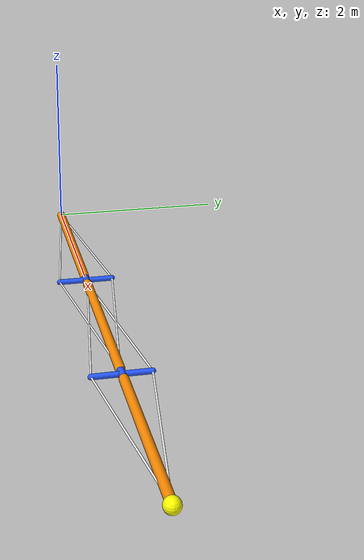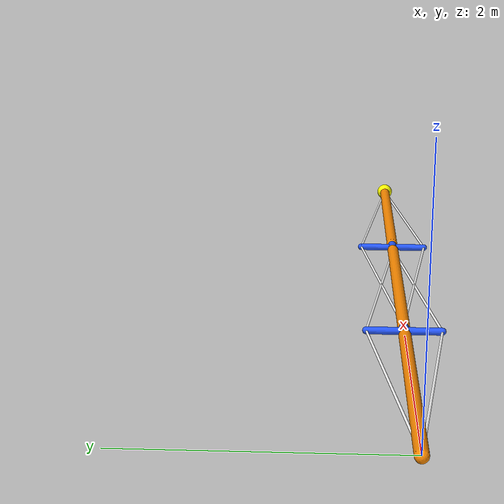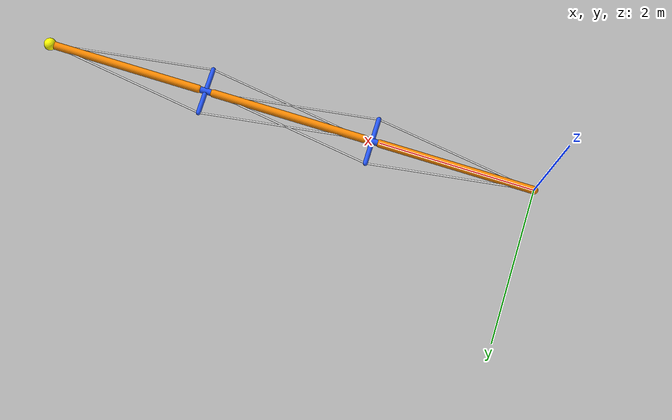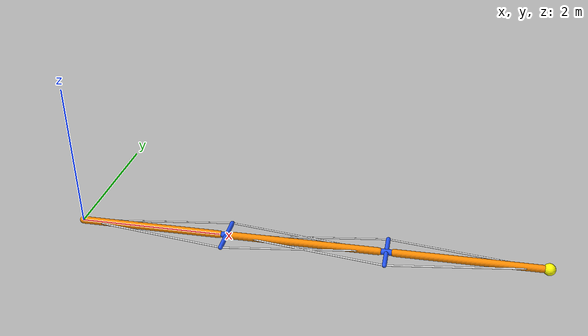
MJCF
<mujoco model="multi_joint_cable_dirven_space_robot">
    <compiler angle="radian" coordinate="local" inertiafromgeom="auto"/>
    <option gravity="0 0 0" integrator="RK4" timestep="0.01"/>

    <visual>
        <global offwidth="1280" offheight="960"/>
    </visual>

    <default>
        <joint type="hinge" axis="0 0 1" limited="true" range="-1.5708 1.5708" damping="2.0"/>
        <geom type="capsule" size="0.05"/>
        <site size="0.04"/>
        <tendon width="0.01" rgba="1 1 1 1"/>
    </default>

    <asset>
        <material name="mat_main_link" rgba="1 0.55 0 1"/>
        <material name="mat_spreader"  rgba="0.15 0.35 1.0 1"/>
        <material name="mat_anchor"    rgba="1 1 1 0"/>
        <!-- 8 个绳索驱动电机的材质: alpha=0 使其在 MuJoCo 渲染中完全不可见,
             同时每个 motor_*_geom 会附加 contype=0 / conaffinity=0 禁用碰撞,
             mass=0 本身也不参与动力学 -> 物理上等价于"不存在",
             仅保留其 XML 定义作为机构装配位置的文档. -->
        <material name="mat_motor"     rgba="0.25 0.25 0.28 0"/>
    </asset>

    <worldbody>
        <light pos="0 0 10" dir="0 0 -1" diffuse="1 1 1"/>

        <site name="anchor_base" pos="0 0 0" material="mat_anchor"/>

        <!-- Link 1: 固定基座 (L1 = 2.0 m)                                     -->
        <body name="link1" pos="0 0 0">
            <geom name="geom_link1" fromto="0 0 0 2.0 0 0" size="0.05" material="mat_main_link" mass="2.866"/>

            <!-- Link1 首端铰链处的 2 个绳索电机 (m11 / m12), 与 anchor_base / cable11 / cable12 同轴
                 contype=conaffinity=0 -> 禁止参与碰撞; material=mat_motor (alpha=0) -> 渲染不可见 -->
            <geom name="motor_m11_geom" type="cylinder" pos="0 0  0.09" euler="0 0 0"
                  size="0.06 0.02" material="mat_motor" mass="0" contype="0" conaffinity="0"/>
            <geom name="motor_m12_geom" type="cylinder" pos="0 0 -0.09" euler="0 0 0"
                  size="0.06 0.02" material="mat_motor" mass="0" contype="0" conaffinity="0"/>

            <!-- Link 2: 第一级 spreader 主轴 (m2=1.161, L2=0.2)                -->
            <body name="link2" pos="2.0 0 0">
                <joint name="joint1"/>
                <inertial pos="0.1 0 0" mass="1.161" diaginertia="0.00387 0.00387 0.00387"/>
                <geom name="geom_link2" fromto="0 0 0 0.2 0 0" size="0.04" material="mat_spreader" mass="0"/>

                <!-- 第一级十字架 (Ls1 = 0.6 m) -->
                <geom name="geom_spreader1" fromto="0.1 -0.3 0 0.1 0.3 0" size="0.03" material="mat_spreader" mass="0"/>
                <site name="spreader1_top" pos="0.1  0.3 0" material="mat_anchor"/>
                <site name="spreader1_bot" pos="0.1 -0.3 0" material="mat_anchor"/>

                <!-- Link 3: 第一级主连杆 (m3=2.866, L3=2.0)                    -->
                <body name="link3" pos="0.2 0 0">
                    <joint name="joint2"/>
                    <geom name="geom_link3" fromto="0 0 0 2.0 0 0" size="0.05" material="mat_main_link" mass="2.866"/>

                    <site name="anchor_l3" pos="0   0 0" material="mat_anchor"/>   <!-- p2: 第二级绳起点 -->
                    <site name="target_l3" pos="2.0 0 0" material="mat_anchor"/>   <!-- p3: 第一级绳终点 -->

                    <!-- Link3 首端的 2 个绳索电机 (m21 / m22), 与 cable21 / cable22 同轴 -->
                    <geom name="motor_m21_geom" type="cylinder" pos="0 0  0.09"
                          size="0.06 0.02" material="mat_motor" mass="0" contype="0" conaffinity="0"/>
                    <geom name="motor_m22_geom" type="cylinder" pos="0 0 -0.09"
                          size="0.06 0.02" material="mat_motor" mass="0" contype="0" conaffinity="0"/>
                    <!-- Link3 末端的 2 个绳索电机 (m13 / m14), 与 cable13 / cable14 同轴 -->
                    <geom name="motor_m13_geom" type="cylinder" pos="2.0 0  0.09"
                          size="0.06 0.02" material="mat_motor" mass="0" contype="0" conaffinity="0"/>
                    <geom name="motor_m14_geom" type="cylinder" pos="2.0 0 -0.09"
                          size="0.06 0.02" material="mat_motor" mass="0" contype="0" conaffinity="0"/>

                    <!-- Link 4: 第二级 spreader 主轴 (m4=1.161, L4=0.2)        -->
                    <body name="link4" pos="2.0 0 0">
                        <joint name="joint3"/>
                        <inertial pos="0.1 0 0" mass="1.161" diaginertia="0.00387 0.00387 0.00387"/>
                        <geom name="geom_link4" fromto="0 0 0 0.2 0 0" size="0.04" material="mat_spreader" mass="0"/>

                        <!-- 第二级十字架 (Ls2 = 0.6 m) -->
                        <geom name="geom_spreader2" fromto="0.1 -0.3 0 0.1 0.3 0" size="0.03" material="mat_spreader" mass="0"/>
                        <site name="spreader2_top" pos="0.1  0.3 0" material="mat_anchor"/>
                        <site name="spreader2_bot" pos="0.1 -0.3 0" material="mat_anchor"/>

                        <!-- Link 5: 第二级主连杆 (m5=2.866, L5=2.0)            -->
                        <body name="link5" pos="0.2 0 0">
                            <joint name="joint4"/>
                            <geom name="geom_link5" fromto="0 0 0 2.0 0 0" size="0.05" material="mat_main_link" mass="2.866"/>

                            <site name="anchor_l5" pos="0   0 0" material="mat_anchor"/>
                            <site name="target_l5" pos="2.0 0 0" material="mat_anchor"/>

                            <!-- Link5 末端的 2 个绳索电机 (m23 / m24), 与 cable23 / cable24 同轴 -->
                            <geom name="motor_m23_geom" type="cylinder" pos="2.0 0  0.09"
                                  size="0.06 0.02" material="mat_motor" mass="0" contype="0" conaffinity="0"/>
                            <geom name="motor_m24_geom" type="cylinder" pos="2.0 0 -0.09"
                                  size="0.06 0.02" material="mat_motor" mass="0" contype="0" conaffinity="0"/>

                            <site name="end_effector" pos="2.0 0 0" size="0.08" rgba="1 1 0 1"/>
                        </body>
                    </body>
                </body>
            </body>
        </body>
    </worldbody>

    <equality>
        <joint joint1="joint2" joint2="joint1" polycoef="0 1 0 0 0"
               solref="0.005 1" solimp="0.99 0.999 0.0001"/>
        <joint joint1="joint4" joint2="joint3" polycoef="0 1 0 0 0"
               solref="0.005 1" solimp="0.99 0.999 0.0001"/>
    </equality>

    <tendon>
        <spatial name="cable11"><site site="anchor_base"/><site site="spreader1_top"/></spatial>
        <spatial name="cable12"><site site="anchor_base"/><site site="spreader1_bot"/></spatial>
        <spatial name="cable13"><site site="target_l3"/>  <site site="spreader1_top"/></spatial>
        <spatial name="cable14"><site site="target_l3"/>  <site site="spreader1_bot"/></spatial>

        <spatial name="cable21"><site site="anchor_l3"/>  <site site="spreader2_top"/></spatial>
        <spatial name="cable22"><site site="anchor_l3"/>  <site site="spreader2_bot"/></spatial>
        <spatial name="cable23"><site site="target_l5"/>  <site site="spreader2_top"/></spatial>
        <spatial name="cable24"><site site="target_l5"/>  <site site="spreader2_bot"/></spatial>
    </tendon>

    <actuator>
        <motor name="winch_c11" tendon="cable11" gear="1" ctrllimited="true" ctrlrange="0 2000"/>
        <motor name="winch_c12" tendon="cable12" gear="1" ctrllimited="true" ctrlrange="0 2000"/>
        <motor name="winch_c13" tendon="cable13" gear="1" ctrllimited="true" ctrlrange="0 2000"/>
        <motor name="winch_c14" tendon="cable14" gear="1" ctrllimited="true" ctrlrange="0 2000"/>
        <motor name="winch_c21" tendon="cable21" gear="1" ctrllimited="true" ctrlrange="0 2000"/>
        <motor name="winch_c22" tendon="cable22" gear="1" ctrllimited="true" ctrlrange="0 2000"/>
        <motor name="winch_c23" tendon="cable23" gear="1" ctrllimited="true" ctrlrange="0 2000"/>
        <motor name="winch_c24" tendon="cable24" gear="1" ctrllimited="true" ctrlrange="0 2000"/>
    </actuator>

    <sensor>
        <actuatorfrc name="tension_c11" actuator="winch_c11"/>
        <actuatorfrc name="tension_c12" actuator="winch_c12"/>
        <actuatorfrc name="tension_c13" actuator="winch_c13"/>
        <actuatorfrc name="tension_c14" actuator="winch_c14"/>
        <actuatorfrc name="tension_c21" actuator="winch_c21"/>
        <actuatorfrc name="tension_c22" actuator="winch_c22"/>
        <actuatorfrc name="tension_c23" actuator="winch_c23"/>
        <actuatorfrc name="tension_c24" actuator="winch_c24"/>

        <jointpos name="encoder_joint1" joint="joint1"/>
        <jointpos name="encoder_joint2" joint="joint2"/>
        <jointpos name="encoder_joint3" joint="joint3"/>
        <jointpos name="encoder_joint4" joint="joint4"/>
    </sensor>
</mujoco>
